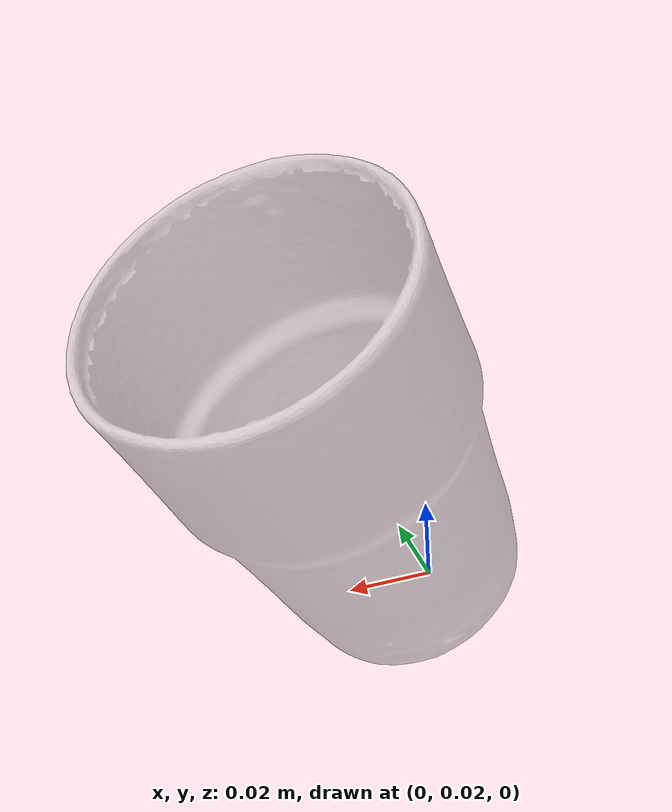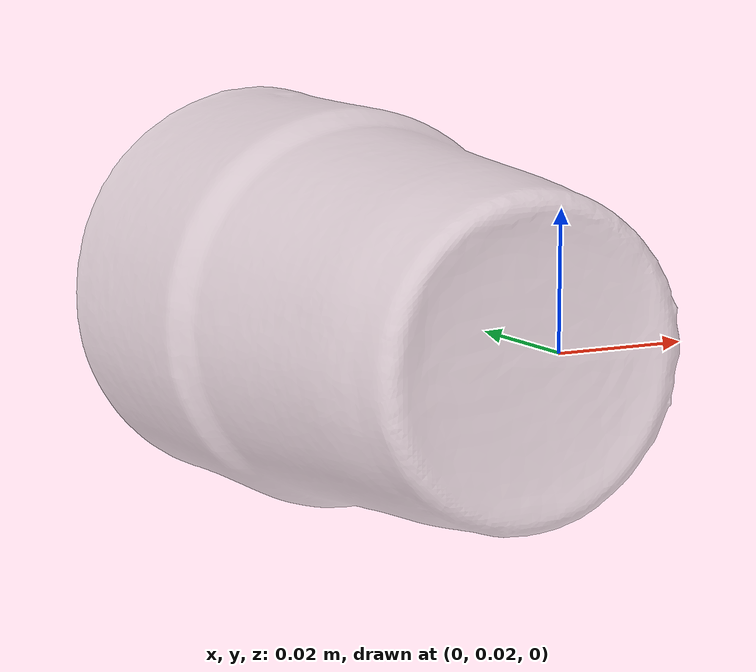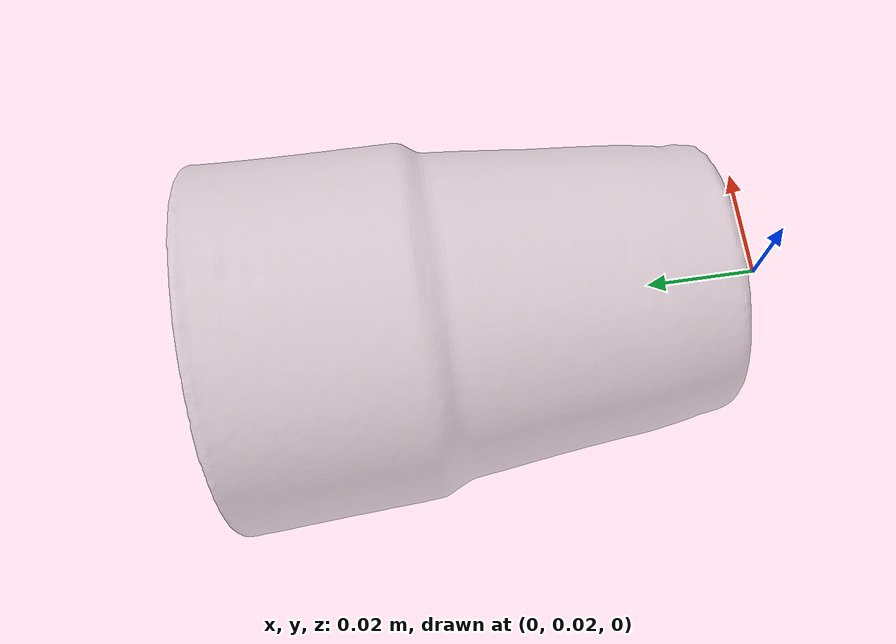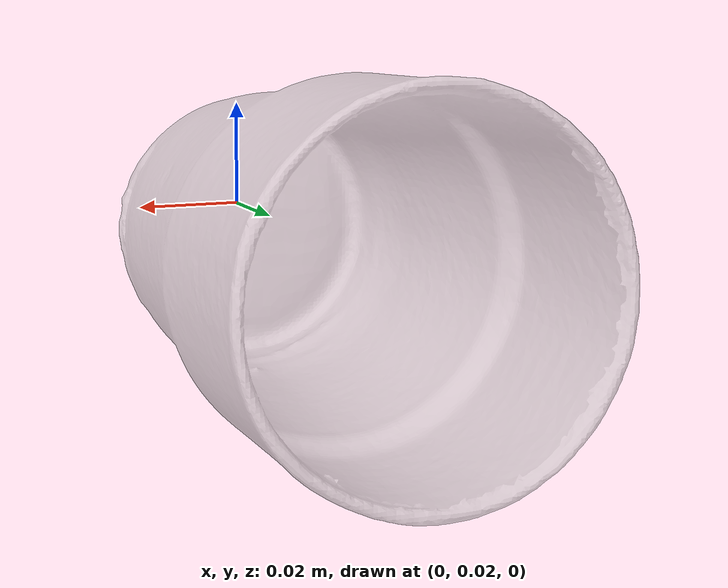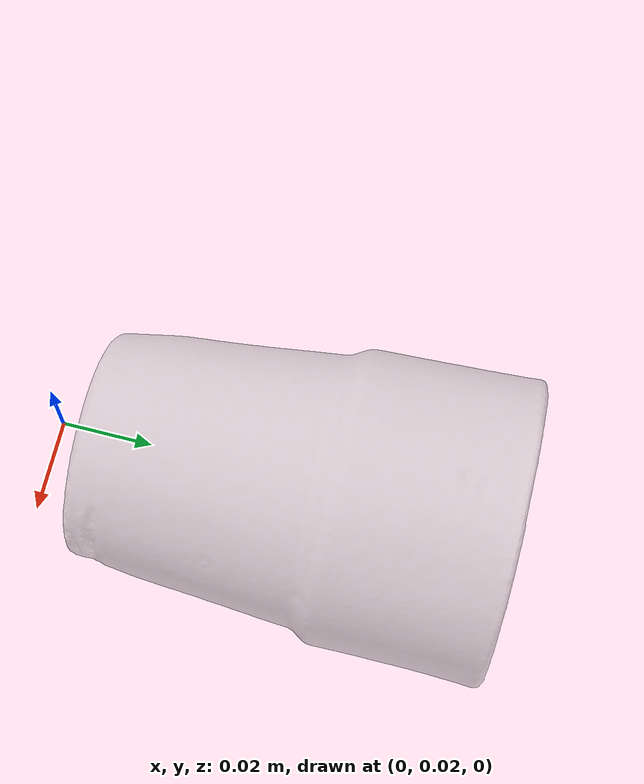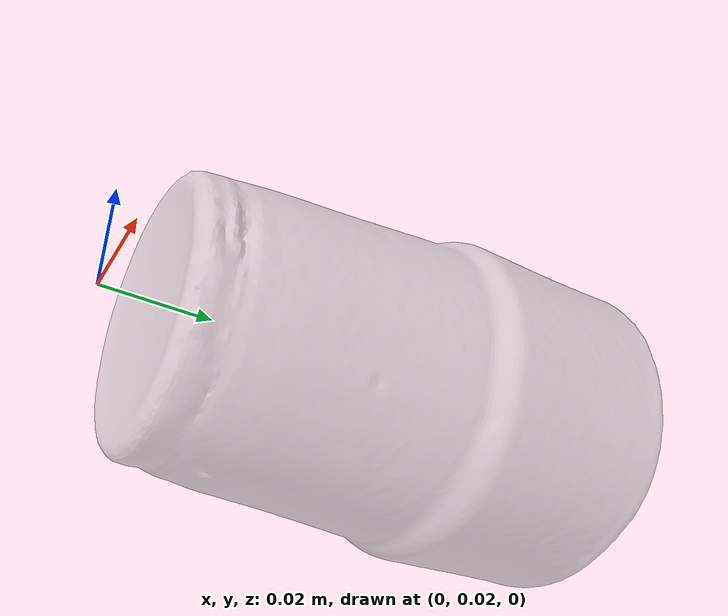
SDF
<?xml version='1.0'?>
<sdf version="1.4">
  <model name="SmallGlass">
    <static>false</static>
    <link name="link">
      <inertial>
        <pose>0.00030426130357634853 0.07904779329398126 -0.0032199167147919858 -1.570403058989326 0.8369434174225809 0.02617372535231795</pose>
        <mass>0.028194904290125177</mass>
        <inertia>
          <ixx>2.625625359593169e-05</ixx>
          <ixy>-2.432962298227438e-22</ixy>
          <ixz>1.0926144038949331e-21</ixz>
          <iyy>2.6156688364837186e-05</iyy>
          <iyz>1.0325941592416455e-21</iyz>
          <izz>1.3991403125950048e-05</izz>
        </inertia>
      </inertial>
      <collision name="collision">
        <geometry>
          <mesh>
            <!-- Use a downsampled mesh for collisions -->
            <uri>model:///SmallGlass/SmallGlass_250_collision.obj</uri>
	        </mesh>
        </geometry>
        <surface>
      </surface>
      </collision>
      <visual name="visual">
        <geometry>
          <mesh>
            <uri>model:///SmallGlass/SmallGlass_25k_tex.obj</uri>
	        </mesh>
        </geometry>
        <material>
          <script>
            <uri>model:///SmallGlass/SmallGlass.material</uri>
            <name>SmallGlass</name>
          </script>
        </material>
      </visual>
    </link>
  </model>
</sdf>
